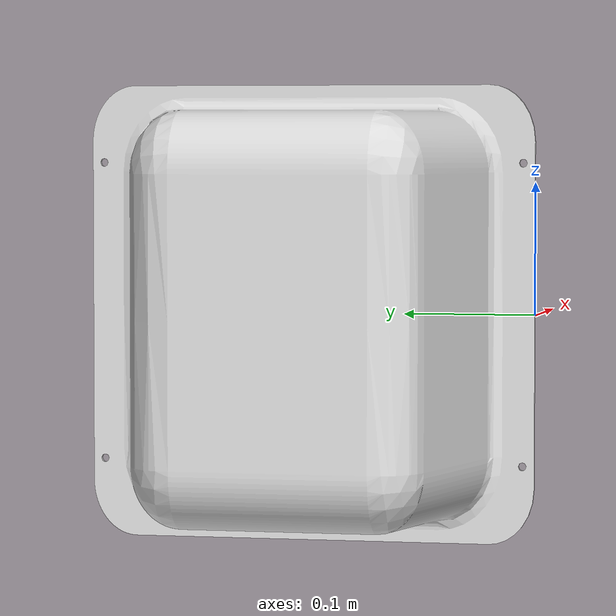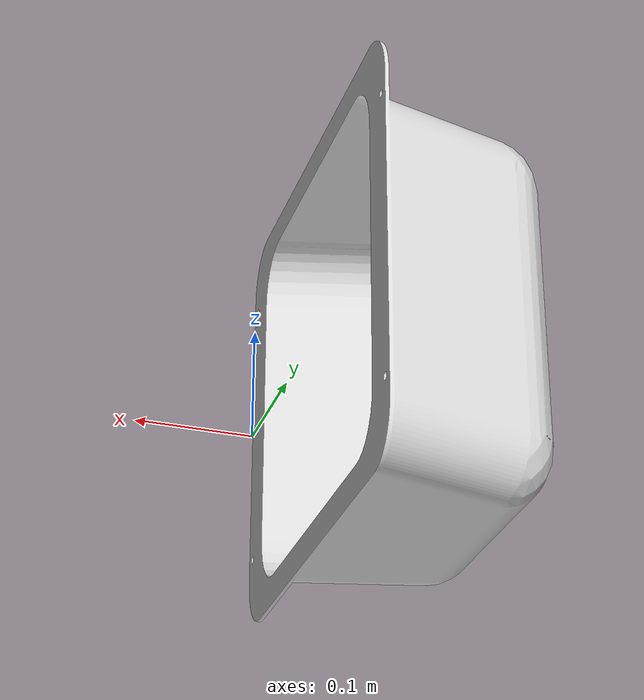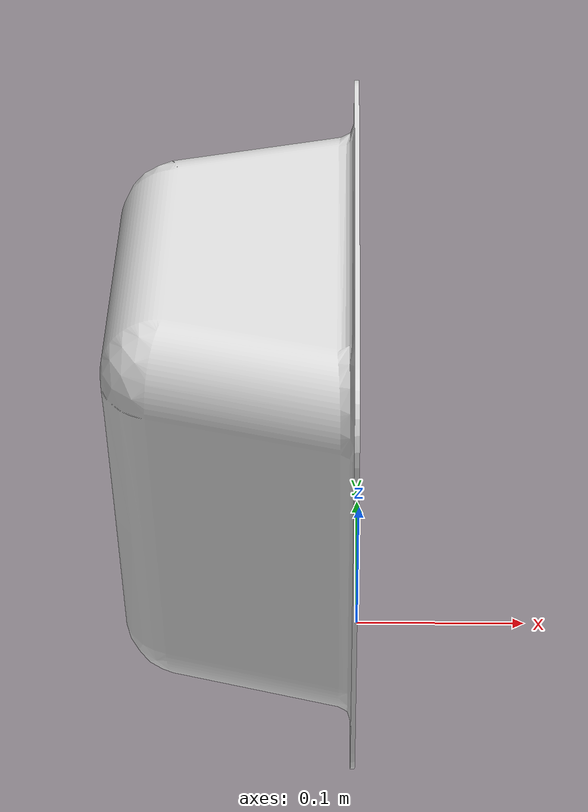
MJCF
<mujoco model="cubby_2">
  <default>
    <default class="visual">
      <geom group="2" type="mesh" contype="0" conaffinity="0"/>
    </default>
    <default class="collision">
      <geom group="3" type="mesh"/>
    </default>
  </default>
  <asset>
    <material name="mtl_cubby_2" specular="0.20000000000000004" shininess="1.0" rgba="0.85098039 0.85098039 0.85098039 1.0"/>
    <mesh file="cubby_2.obj"/>
  </asset>
  <worldbody>
    <body name="cubby_2">
      <geom material="mtl_cubby_2" mesh="cubby_2" class="visual"/>
      <geom mesh="cubby_2" class="collision"/>
    </body>
  </worldbody>
</mujoco>
